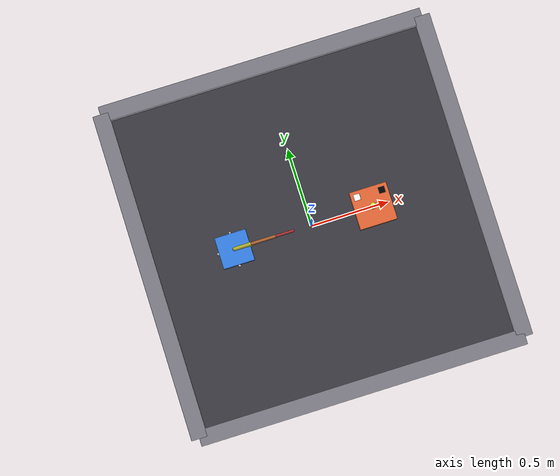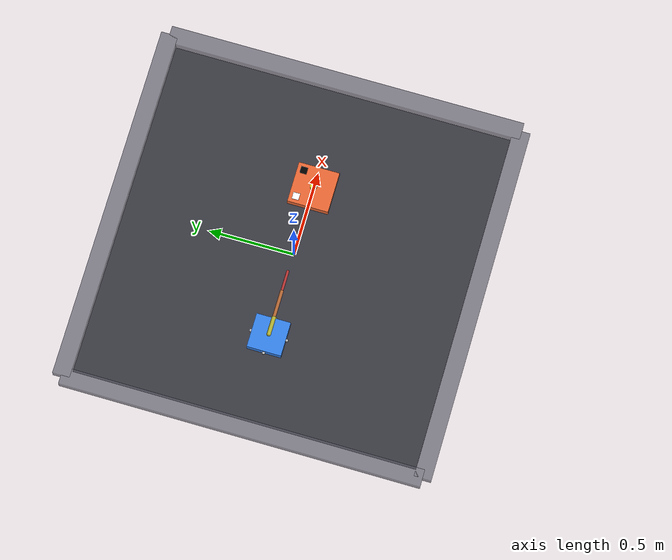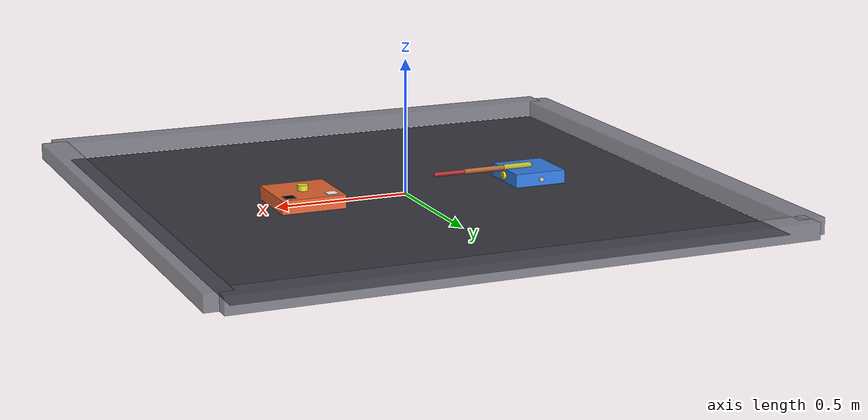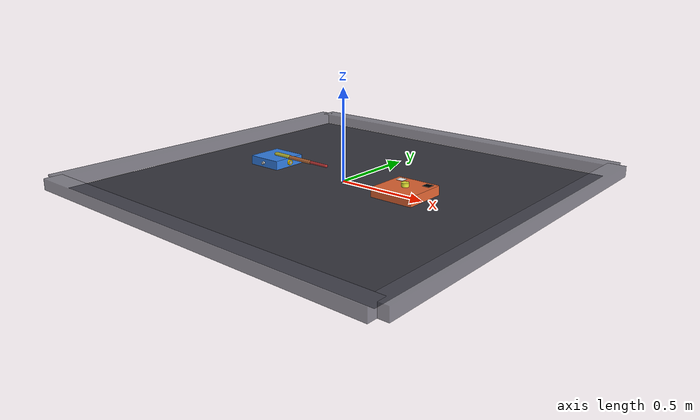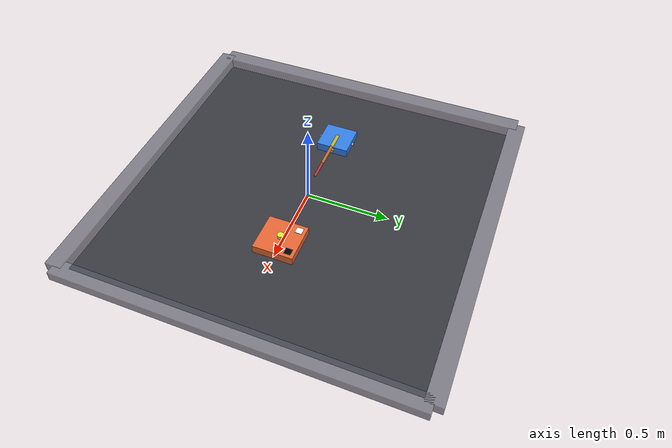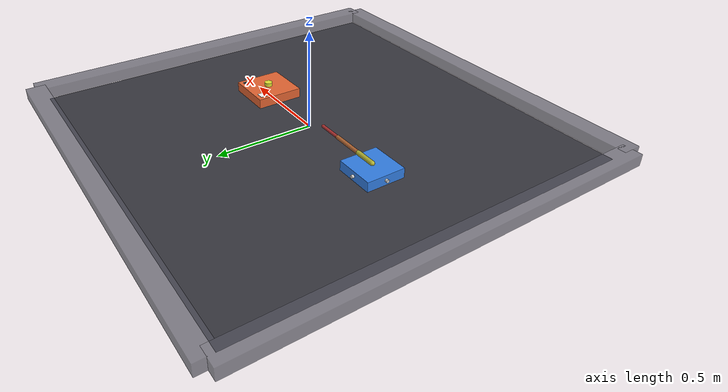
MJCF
<mujoco model="air_bearing_table">
  <compiler angle="radian"/>
  <option gravity="0 0 0" timestep="0.002" integrator="RK4">
    <flag gravity="disable"/>
  </option>
  <asset>
    <texture name="table_tex" type="2d" builtin="flat" rgb1="0.22 0.22 0.25" width="128" height="128"/>
    <material name="table_mat" texture="table_tex" reflectance="0.04"/>
    <material name="wall_mat"  rgba="0.35 0.35 0.4 0.7"/>
    <material name="chaser_mat" rgba="0.2 0.5 0.9 1"/>
    <material name="target_mat" rgba="0.9 0.4 0.2 1"/>
  </asset>
  <worldbody>
    <light name="top" pos="0 0 3" dir="0 0 -1" diffuse="0.8 0.8 0.8"/>
    <body name="table">
      <geom name="surface" type="plane" size="1 1 0.01" material="table_mat"
            friction="0.001 0.001 0.001" contype="1" conaffinity="1"/>
    </body>
    <body name="wall_n" pos=" 0    1.05 0.03"><geom type="box" size="1.05 0.05 0.03" material="wall_mat"/></body>
    <body name="wall_s" pos=" 0   -1.05 0.03"><geom type="box" size="1.05 0.05 0.03" material="wall_mat"/></body>
    <body name="wall_e" pos=" 1.05 0    0.03"><geom type="box" size="0.05 1.05 0.03" material="wall_mat"/></body>
    <body name="wall_w" pos="-1.05 0    0.03"><geom type="box" size="0.05 1.05 0.03" material="wall_mat"/></body>

    <!-- Chaser: 20 cm square, 15 kg, 4 cold-gas thrusters -->
    <body name="chaser" pos="-0.5 0 0.03">
      <joint name="chaser_x"   type="slide" axis="1 0 0" damping="0.05"/>
      <joint name="chaser_y"   type="slide" axis="0 1 0" damping="0.05"/>
      <joint name="chaser_yaw" type="hinge" axis="0 0 1" damping="0.02"/>
      <inertial pos="0 0 0" mass="15" diaginertia="0.05 0.05 0.08"/>
      <geom name="chaser_body" type="box" size="0.10 0.10 0.025"
            material="chaser_mat"
            contype="2" conaffinity="2"/>
      <geom name="thr_fwd_v"  type="cylinder" size="0.008 0.012" pos=" 0.10  0    0" euler="0  1.5708 0" rgba="0.8 0.8 0.8 1" contype="0" conaffinity="0" mass="0"/>
      <geom name="thr_aft_v"  type="cylinder" size="0.008 0.012" pos="-0.10  0    0" euler="0 -1.5708 0" rgba="0.8 0.8 0.8 1" contype="0" conaffinity="0" mass="0"/>
      <geom name="thr_port_v" type="cylinder" size="0.008 0.012" pos=" 0    0.10  0" euler=" 1.5708 0 0" rgba="0.8 0.8 0.8 1" contype="0" conaffinity="0" mass="0"/>
      <geom name="thr_stbd_v" type="cylinder" size="0.008 0.012" pos=" 0   -0.10  0" euler="-1.5708 0 0" rgba="0.8 0.8 0.8 1" contype="0" conaffinity="0" mass="0"/>
      <geom name="dock_port"  type="cylinder" size="0.015 0.005" pos="0.105 0 0"
            euler="0 1.5708 0" rgba="1.0 0.85 0.0 1" contype="0" conaffinity="0" mass="0"/>
      <!-- Actuator sites: index order must match ThrusterCommand.force[4] -->
      <site name="thr_fwd_site"  pos=" 0.10  0    0" size="0.003"/>
      <site name="thr_aft_site"  pos="-0.10  0    0" size="0.003"/>
      <site name="thr_port_site" pos=" 0     0.10 0" size="0.003"/>
      <site name="thr_stbd_site" pos=" 0    -0.10 0" size="0.003"/>
      <site name="chaser_imu"    pos="0 0 0"         size="0.005"/>

      <!-- 3-DOF manipulator arm, rigidly mounted on chaser top face -->
      <body name="arm_link1" pos="0 0 0.03">
        <joint name="arm_joint1" type="hinge" axis="0 0 1"
               range="-3.14159 3.14159" limited="true" damping="0.02" frictionloss="0.01"/>
        <inertial pos="0.05 0 0" mass="0.3" diaginertia="0.0004 0.0004 0.0002"/>
        <geom name="arm_link1_geom" type="capsule" fromto="0 0 0 0.10 0 0"
              size="0.012" rgba="0.7 0.7 0.2 1" contype="0" conaffinity="0"/>

        <body name="arm_link2" pos="0.10 0 0">
          <joint name="arm_joint2" type="hinge" axis="0 1 0"
                 range="-1.5708 1.5708" limited="true" damping="0.02" frictionloss="0.01"/>
          <inertial pos="0.08 0 0" mass="0.25" diaginertia="0.0006 0.0006 0.0001"/>
          <geom name="arm_link2_geom" type="capsule" fromto="0 0 0 0.16 0 0"
                size="0.010" rgba="0.7 0.4 0.2 1" contype="0" conaffinity="0"/>

          <body name="arm_link3" pos="0.16 0 0">
            <joint name="arm_joint3" type="hinge" axis="0 1 0"
                   range="-2.61799 2.61799" limited="true" damping="0.01" frictionloss="0.005"/>
            <inertial pos="0.06 0 0" mass="0.15" diaginertia="0.0002 0.0002 0.00005"/>
            <geom name="arm_link3_geom" type="capsule" fromto="0 0 0 0.12 0 0"
                  size="0.008" rgba="0.7 0.2 0.2 1" contype="0" conaffinity="0"/>
            <site name="arm_ee_site" pos="0.12 0 0" size="0.006"/>
          </body>
        </body>
      </body>
    </body>

    <!-- Target: 24 cm square, 20 kg, stationary -->
    <body name="target" pos="0.4 0 0.03">
      <joint name="target_x"   type="slide" axis="1 0 0" damping="0.01"/>
      <joint name="target_y"   type="slide" axis="0 1 0" damping="0.01"/>
      <joint name="target_yaw" type="hinge" axis="0 0 1" damping="0.005"/>
      <inertial pos="0 0 0" mass="20" diaginertia="0.08 0.08 0.12"/>
      <geom name="target_body" type="box" size="0.12 0.12 0.025"
            material="target_mat"
            contype="2" conaffinity="2"/>
      <geom name="grapple" type="cylinder" size="0.02 0.01" pos="0 0 0.035"
            rgba="0.9 0.9 0.2 1" contype="0" conaffinity="0" mass="0"/>
      <!-- AR tag placeholders for Phase 3 vision -->
      <geom name="tag_a" type="box" size="0.02 0.02 0.001" pos=" 0.08  0.08 0.026" rgba="0 0 0 1" contype="0" conaffinity="0" mass="0"/>
      <geom name="tag_b" type="box" size="0.02 0.02 0.001" pos="-0.08  0.08 0.026" rgba="1 1 1 1" contype="0" conaffinity="0" mass="0"/>
      <site name="target_centre" pos="0 0 0" size="0.005"/>
    </body>
  </worldbody>

  <!-- Actuator index order: [fwd=0, aft=1, port=2, stbd=3] — must match ThrusterCommand -->
  <actuator>
    <general name="thr_fwd"  site="thr_fwd_site"  gear="1 0 0 0 0 0"  ctrlrange="0 5" forcelimited="true" forcerange="0 5"/>
    <general name="thr_aft"  site="thr_aft_site"  gear="-1 0 0 0 0 0" ctrlrange="0 5" forcelimited="true" forcerange="0 5"/>
    <general name="thr_port" site="thr_port_site" gear="0 1 0 0 0 0"  ctrlrange="0 5" forcelimited="true" forcerange="0 5"/>
    <general name="thr_stbd" site="thr_stbd_site" gear="0 -1 0 0 0 0" ctrlrange="0 5" forcelimited="true" forcerange="0 5"/>

    <!-- Arm joint torque actuators — index order must match ArmTorqueCommand.effort[3] -->
    <motor name="arm_j1" joint="arm_joint1" gear="1" ctrlrange="-2 2" ctrllimited="true"/>
    <motor name="arm_j2" joint="arm_joint2" gear="1" ctrlrange="-2 2" ctrllimited="true"/>
    <motor name="arm_j3" joint="arm_joint3" gear="1" ctrlrange="-1 1" ctrllimited="true"/>
  </actuator>
</mujoco>
